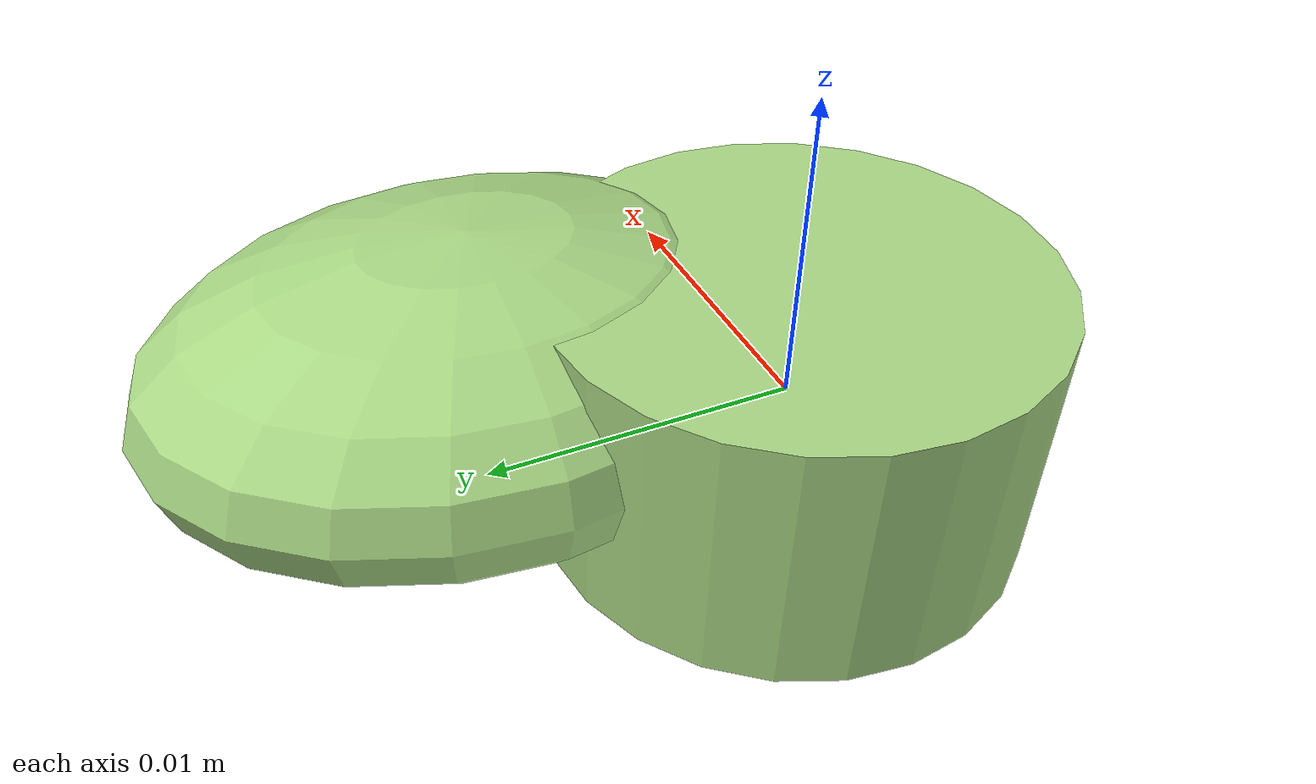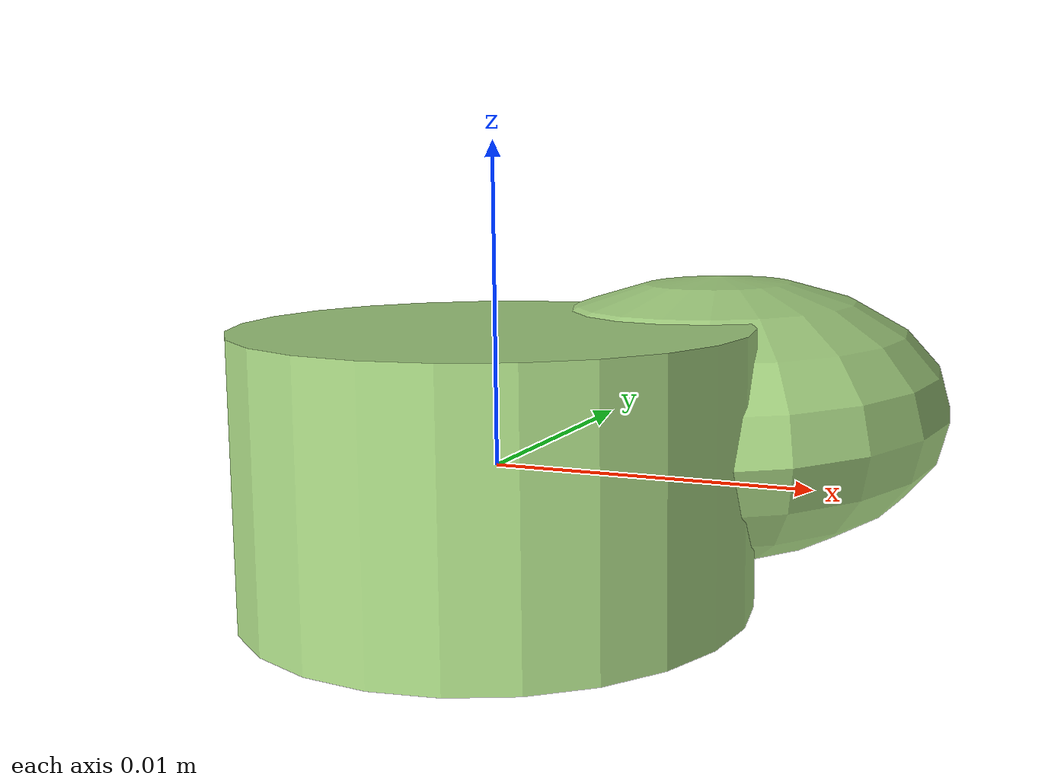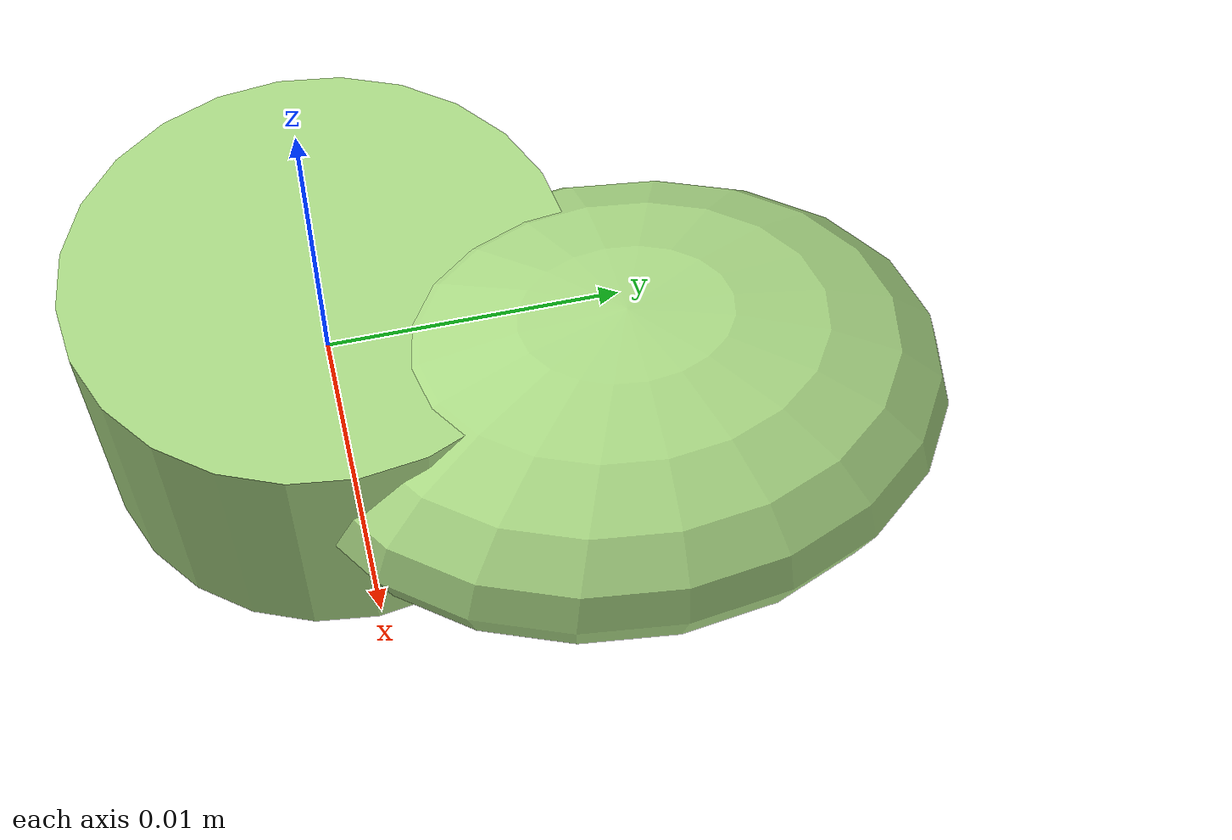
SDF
<?xml version="1.0" ?>
<!-- |    This document was autogenerated by xmacro from data/veggie_template/veggie_base.sdf.xacro  | -->
<!-- |    EDITING THIS FILE BY HAND IS NOT RECOMMENDED                                               | -->
<sdf version="1.8">
	<!-- Parameters -->
	<!-- Base -->
	<!-- Joint 0 -->
	<!-- Link 1 -->
	<!-- Joint 1 -->
	<!-- Link 2 -->
	<!-- Primitives -->
	<!-- All dimensions are half -->
	<!-- Object -->
	<model name="veggie">
		<!-- link0 -->
		<link name="link0">
			<inertial>
				<mass>0.0017648998278602139</mass>
				<inertia>
					<ixx>3.9616751382964315e-08</ixx>
					<ixy>0</ixy>
					<ixz>0</ixz>
					<iyy>3.9616751382964315e-08</iyy>
					<iyz>0</iyz>
					<izz>5.6922437256032e-08</izz>
				</inertia>
			</inertial>
			<visual name="link0_visual">
				<pose>0 0 0 0 0 0</pose>
				<geometry>
					<cylinder>
						<radius>0.008031500874577614</radius>
						<length>0.00870914959745759</length>
					</cylinder>
				</geometry>
				<material>
					<ambient>0.659 0.839 0.514 1</ambient>
					<diffuse>0.659 0.839 0.514 1</diffuse>
					<specular>0 0 0 0</specular>
					<emissive>0 0 0 1</emissive>
				</material>
			</visual>
			<collision name="link0_collision">
				<pose>0 0 0 0 0 0 </pose>
				<geometry>
					<cylinder>
						<radius>0.008031500874577614</radius>
						<length>0.00870914959745759</length>
					</cylinder>
				</geometry>
			</collision>
		</link>
		<!-- link1 -->
		<joint name="joint0" type="fixed">
			<pose relative_to="link0">0.004588376443243203 0.008769496411118403 0.0005870103664273578 0.0 0.0 0.0</pose>
			<parent>link0</parent>
			<child>link1</child>
		</joint>
		<link name="link1">
			<pose relative_to="joint0">0 0 0 0 0 0</pose>
			<inertial>
				<mass>0.0017805047035981789</mass>
				<inertia>
					<ixx>4.978338024149288e-08</ixx>
					<ixy>0</ixy>
					<ixz>0</ixz>
					<iyy>3.2161340254822214e-08</iyy>
					<iyz>0</iyz>
					<izz>6.559522470330521e-08</izz>
				</inertia>
			</inertial>
			<visual name="link1_visual">
				<pose>0 0 0 0 0 0</pose>
				<geometry>
					<ellipsoid>
						<radii>0.008207251023900292 0.010809488902873716 0.004791269762767393</radii>
					</ellipsoid>
				</geometry>
				<material>
					<ambient>0.659 0.839 0.514 1</ambient>
					<diffuse>0.659 0.839 0.514 1</diffuse>
					<specular>0 0 0 0</specular>
					<emissive>0 0 0 1</emissive>
				</material>
			</visual>
			<collision name="link1_collision">
				<pose>0 0 0 0 0 0 </pose>
				<geometry>
					<ellipsoid>
						<radii>0.008207251023900292 0.010809488902873716 0.004791269762767393</radii>
					</ellipsoid>
				</geometry>
			</collision>
		</link>
		<!-- link2 -->
	</model>
</sdf>
